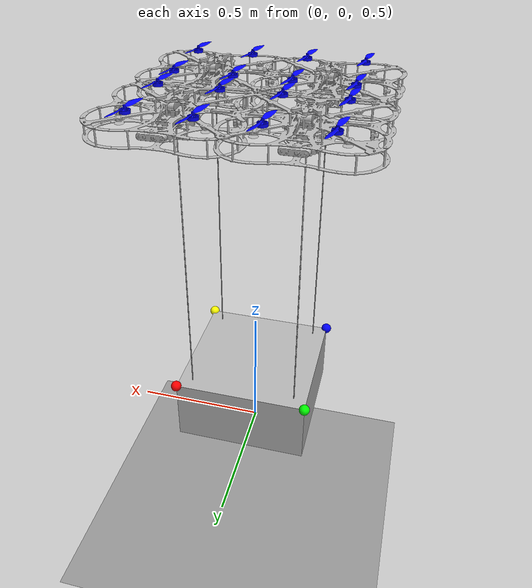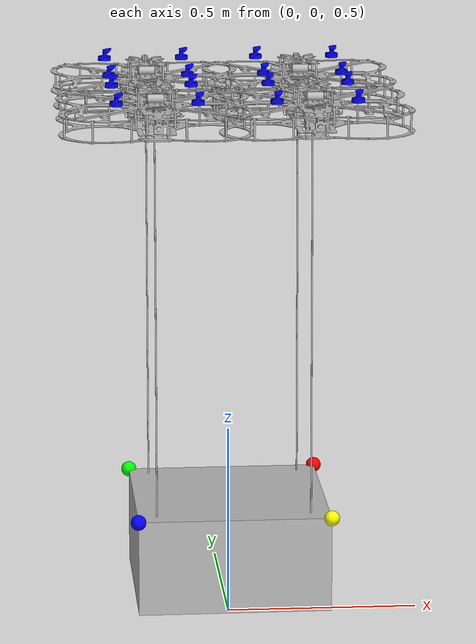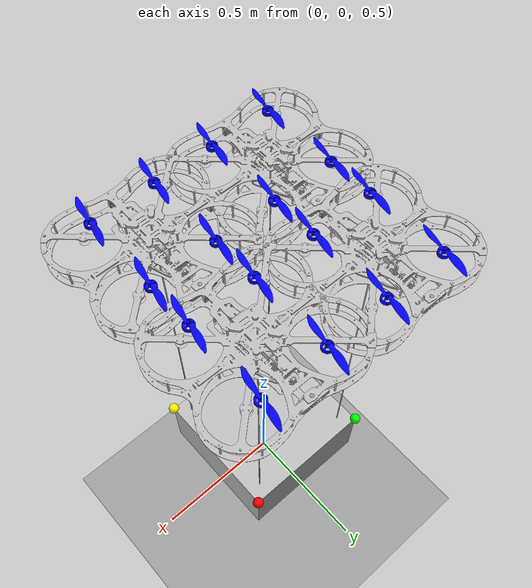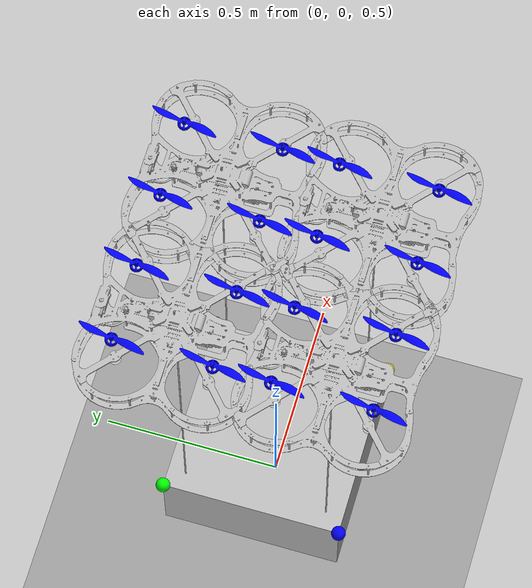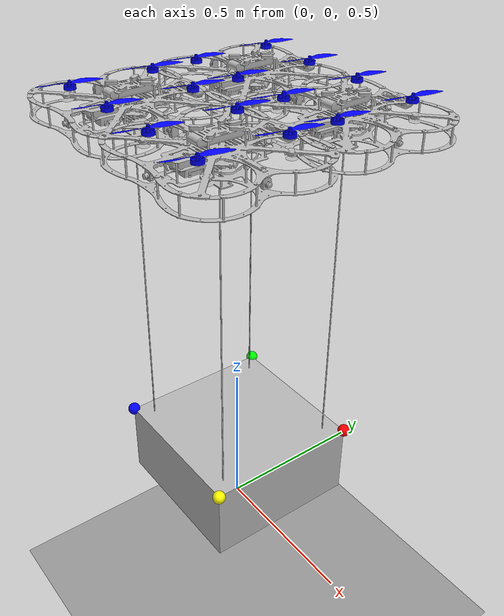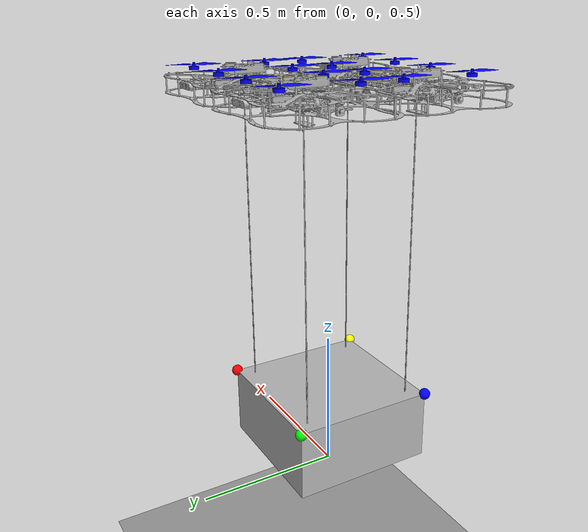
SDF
<sdf version="1.9">
  <world name="coop_transport">

    <!-- Physics: DART -->
    <physics type="dart">
      <max_step_size>0.001</max_step_size>
      <real_time_factor>1.0</real_time_factor>
      <real_time_update_rate>1000</real_time_update_rate>
      <dart>
        <solver><solver_type>dantzig</solver_type></solver>
        <collision_detector>bullet</collision_detector>
      </dart>
    </physics>

    <gravity>0 0 -9.82</gravity>
    <magnetic_field>6e-06 2.3e-05 -4.2e-05</magnetic_field>
    <atmosphere type="adiabatic" />
    <scene>
      <ambient>0.4 0.4 0.4 1</ambient>
      <background>0.7 0.7 0.8 1</background>
      <shadows>false</shadows>
    </scene>
    <light name="sun" type="directional">
      <pose>0 0 10 0 -0 0</pose>
      <cast_shadows>false</cast_shadows>
      <intensity>1</intensity>
      <direction>-0.5 0.1 -0.9</direction>
    </light>
     <light name="lights1" type="directional">
      <pose>0 0 3 0 -0 0</pose>
      <cast_shadows>false</cast_shadows>
      <intensity>1</intensity>
      <direction>0 0 -1</direction>
    </light>
    <light name="lights2" type="directional">
      <pose>1 0 3 0 -0 0</pose>
      <cast_shadows>false</cast_shadows>
      <intensity>1</intensity>
      <direction>0 0 -1</direction>
    </light>

    <light name="lights3" type="directional">
      <pose>-1 0 3 0 -0 0</pose>
      <cast_shadows>false</cast_shadows>
      <intensity>1</intensity>
      <direction>0 0 -1</direction>
    </light>

    <light name="lights4" type="directional">
      <pose>0 1 3 0 -0 0</pose>
      <cast_shadows>false</cast_shadows>
      <intensity>1</intensity>
      <direction>0 0 -1</direction>
    </light>

    <light name="lights5" type="directional">
      <pose>0 1 3 0 -0 0</pose>
      <cast_shadows>false</cast_shadows>
      <intensity>1</intensity>
      <direction>0 0 -1</direction>
    </light>

    <!-- Ground -->
    <model name="ground">
      <static>true</static>
      <link name="link">
        <collision name="col">
          <geometry><plane><normal>0 0 1</normal><size>200 200</size></plane></geometry>
        </collision>
        <visual name="vis">
          <geometry><plane><normal>0 0 1</normal><size>200 200</size></plane></geometry>

<material>
  <ambient>0.2 0.2 0.2 1</ambient>
  <diffuse>0.6 0.6 0.6 1</diffuse>
  <specular>1.0 1.0 1.0 1</specular>
  <shininess>100</shininess>
</material>

        </visual>
      </link>
    </model>

    <!-- Quadrotors (assumes model://quadrotor.sdf has link 'base_link') -->
    <model name="coop_agent">
    <include>
      <uri>model://quadrotor.sdf</uri>
      <name>quadrotor1</name>
      <pose> 0.20  0.20  1.9  0 0 0</pose>
    </include>
    <include>
      <uri>model://quadrotor.sdf</uri>
      <name>quadrotor2</name>
      <pose>-0.20  0.20  1.9  0 0 0</pose>
    </include>
    <include>
      <uri>model://quadrotor.sdf</uri>
      <name>quadrotor3</name>
      <pose>-0.20 -0.20  1.9  0 0 0</pose>
    </include>
    <include>
      <uri>model://quadrotor.sdf</uri>
      <name>quadrotor4</name>
      <pose> 0.20 -0.20  1.9  0 0 0</pose>
    </include>

    <!-- Payload box at origin (COM at z=1.00). Size 0.5x0.5x0.25 (half-height = 0.125) -->
   <model name="payload_box">
  <pose>0 0 0.7 0 0 0</pose>

  <!-- Main box -->
  <link name="payload_box_link">
    <inertial>
      <mass>0.500</mass>
      <inertia>
        <ixx>0.0130</ixx>
        <iyy>0.0130</iyy>
        <izz>0.02</izz>
      </inertia>
    </inertial>
    <collision name="payload_col">
      <geometry><box><size>0.5 0.5 0.25</size></box></geometry>
    </collision>
    <visual name="payload_vis">
      <geometry><box><size>0.5 0.5 0.25</size></box></geometry>
    </visual>
  </link>

  <!-- Corner links (tiny spheres, nearly massless) -->
  <link name="corner1">
    <pose> 0.25  0.25 0.125  0 0 0</pose>
    <inertial>
      <mass>0.001</mass>
      <inertia>
        <ixx>1e-6</ixx><iyy>1e-6</iyy><izz>1e-6</izz>
      </inertia>
    </inertial>
    <visual name="vis_corner1">
      <geometry><sphere><radius>0.02</radius></sphere></geometry>
      <material><ambient>1 0 0 1</ambient></material>
    </visual>
  </link>

  <link name="corner2">
    <pose>-0.25  0.25 0.125  0 0 0</pose>
    <inertial>
      <mass>0.001</mass>
      <inertia>
        <ixx>1e-6</ixx><iyy>1e-6</iyy><izz>1e-6</izz>
      </inertia>
    </inertial>
    <visual name="vis_corner2">
      <geometry><sphere><radius>0.02</radius></sphere></geometry>
      <material><ambient>0 1 0 1</ambient></material>
    </visual>
  </link>

  <link name="corner3">
    <pose>-0.25 -0.25 0.125  0 0 0</pose>
    <inertial>
      <mass>0.001</mass>
      <inertia>
        <ixx>1e-6</ixx><iyy>1e-6</iyy><izz>1e-6</izz>
      </inertia>
    </inertial>
    <visual name="vis_corner3">
      <geometry><sphere><radius>0.02</radius></sphere></geometry>
      <material><ambient>0 0 1 1</ambient></material>
    </visual>
  </link>

  <link name="corner4">
    <pose> 0.25 -0.25 0.125  0 0 0</pose>
    <inertial>
      <mass>0.001</mass>
      <inertia>
        <ixx>1e-6</ixx><iyy>1e-6</iyy><izz>1e-6</izz>
      </inertia>
    </inertial>
    <visual name="vis_corner4">
      <geometry><sphere><radius>0.02</radius></sphere></geometry>
      <material><ambient>1 1 0 1</ambient></material>
    </visual>
  </link>

</model>

    <!-- Tether template (replicated 4x)
         Each tether is a 0.60 m cylinder (r=0.002), link origin at its center.
         We'll place the link midpoint midway between UAV and its payload attach.
    -->
    <model name="tether1">
      <pose>0.20 0.20 1.3625  0 0 0</pose>
      <link name="link">
        <inertial>
          <mass>0.006</mass>
          <inertia>
            <!-- Slender rod L=0.60, r=0.002 -->
            <ixx>7.2e-4</ixx>
            <iyy>7.2e-4</iyy>
            <izz>1.20e-8</izz>
          </inertia>
        </inertial>
        <collision name="col">
          <!-- Draw the cylinder centered at link origin, axis along +Z -->
          <geometry><cylinder><radius>0.002</radius><length>1.2</length></cylinder></geometry>
          <surface><soft_contact><dart>
            <bone_attachment>100</bone_attachment>
            <stiffness>100</stiffness>
            <damping>10</damping>
            <flesh_mass_fraction>0.05</flesh_mass_fraction>
            </dart></soft_contact></surface>
        </collision>
        <visual name="vis">
          <geometry><cylinder><radius>0.002</radius><length>1.2</length></cylinder></geometry>
        </visual>
      </link>
    </model>

    <model name="tether2">
      <pose>-0.20 0.20 1.3625  0 0 0</pose>
      <link name="link">
        <inertial>
          <mass>0.006</mass>
          <inertia><ixx>7.2e-4</ixx><iyy>7.2e-4</iyy><izz>1.20e-8</izz></inertia>
        </inertial>
        <collision name="col">
          <geometry><cylinder><radius>0.002</radius><length>1.2</length></cylinder></geometry>
          <surface><soft_contact><dart>
            <bone_attachment>100</bone_attachment>
            <stiffness>100</stiffness>
            <damping>10</damping>
            <flesh_mass_fraction>0.05</flesh_mass_fraction>
            </dart></soft_contact></surface>
        </collision>
        <visual name="vis">
          <geometry><cylinder><radius>0.002</radius><length>1.2</length></cylinder></geometry>
        </visual>
      </link>
    </model>

    <model name="tether3">
      <pose>-0.20 -0.20 1.3625  0 0 0</pose>
      <link name="link">
        <inertial>
          <mass>0.006</mass>
          <inertia><ixx>7.2e-4</ixx><iyy>7.2e-4</iyy><izz>1.20e-8</izz></inertia>
        </inertial>
        <collision name="col">
          <geometry><cylinder><radius>0.002</radius><length>1.2</length></cylinder></geometry>
          <surface><soft_contact><dart>
            <bone_attachment>100</bone_attachment>
            <stiffness>100</stiffness>
            <damping>10</damping>
            <flesh_mass_fraction>0.05</flesh_mass_fraction>
            </dart></soft_contact></surface>
        </collision>
        <visual name="vis">
          <geometry><cylinder><radius>0.002</radius><length>1.2</length></cylinder></geometry>
        </visual>
      </link>
    </model>

    <model name="tether4">
      <pose>0.20 -0.20 1.3625  0 0 0</pose>
      <link name="link">
        <inertial>
          <mass>0.006</mass>
          <inertia><ixx>7.2e-4</ixx><iyy>7.2e-4</iyy><izz>1.20e-8</izz></inertia>
        </inertial>
        <collision name="col">
          <geometry><cylinder><radius>0.002</radius><length>1.2</length></cylinder></geometry>
          <surface><soft_contact><dart>
            <bone_attachment>100</bone_attachment>
            <stiffness>100</stiffness>
            <damping>10</damping>
            <flesh_mass_fraction>0.05</flesh_mass_fraction>
            </dart></soft_contact></surface>
        </collision>
        <visual name="vis">
          <geometry><cylinder><radius>0.002</radius><length>1.2</length></cylinder></geometry>
        </visual>
      </link>
    </model>

    <!-- Tether 1: +x,+y corner -->
    <joint name="t1_top" type="ball">
      <parent>quadrotor1::quadrotor/base_link</parent>
      <child>tether1::link</child>
      <!-- joint frame at tether top end (child +0.30 z) -->
      <pose relative_to="tether1::link">0 0 0.60  0 0 0</pose>
    </joint>
    <joint name="t1_bottom" type="ball">
      <parent>tether1::link</parent>
      <child>payload_box::corner1</child>
      <!-- joint frame at tether bottom end (child -0.30 z) which is also payload corner (+0.20,+0.20,+0.125) in world initially -->
      <pose relative_to="tether1::link">0 0 -0.60  0 0 0</pose>
    </joint>

    <!-- Tether 2: -x,+y corner -->
    <joint name="t2_top" type="ball">
      <parent>quadrotor2::quadrotor/base_link</parent>
      <child>tether2::link</child>
      <pose relative_to="tether2::link">0 0 0.60  0 0 0</pose>
    </joint>
    <joint name="t2_bottom" type="ball">
      <parent>tether2::link</parent>
      <child>payload_box::corner2</child>
      <pose relative_to="tether2::link">0 0 -0.60  0 0 0</pose>
    </joint>

    <!-- Tether 3: -x,-y corner -->
    <joint name="t3_top" type="ball">
      <parent>quadrotor3::quadrotor/base_link</parent>
      <child>tether3::link</child>
      <pose relative_to="tether3::link">0 0 0.60  0 0 0</pose>
    </joint>
    <joint name="t3_bottom" type="ball">
      <parent>tether3::link</parent>
      <child>payload_box::corner3</child>
      <pose relative_to="tether3::link">0 0 -0.60  0 0 0</pose>
    </joint>

    <!-- Tether 4: +x,-y corner -->
    <joint name="t4_top" type="ball">
      <parent>quadrotor4::quadrotor/base_link</parent>
      <child>tether4::link</child>
      <pose relative_to="tether4::link">0 0 0.60  0 0 0</pose>
    </joint>
    <joint name="t4_bottom" type="ball">
      <parent>tether4::link</parent>
      <child>payload_box::corner4</child>
      <pose relative_to="tether4::link">0 0 -0.60  0 0 0</pose>
    </joint>
    </model>

  </world>
</sdf>

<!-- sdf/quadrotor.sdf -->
<sdf version='1.11'>
  <model name='quadrotor'>

    <enable_wind>1</enable_wind>
    <link name='quadrotor/base_link'>
      <inertial>
        <pose>0 0 0 0 0 0</pose>
        <mass>1.52</mass>
        <inertia>
          <ixx>14387108.65e-9</ixx>
          <iyy>16559882.52e-9</iyy>
          <izz>28784890.45e-9</izz>
        </inertia>
      </inertial>
      <collision name='quadrotor/base_link_inertia_collision_2'>
        <pose>0 0 0 0 0 0</pose>
        <geometry>
          <box>
            <size>0.2 0.2 0.05</size>
          </box>
        </geometry>
        <surface>
          <contact>
            <collide_without_contact>1</collide_without_contact>
          </contact>
        </surface>
      </collision>
      <visual name='quadrotor/base_link_inertia_visual_2'>
        <pose>0 0 0 3.1415920000000002 0 0</pose>
        <geometry>
          <mesh>
            <scale>1 1 1</scale>
            <uri>model://meshes/QDrone2_Combined.dae</uri>
          </mesh>
        </geometry>
      </visual>
      <sensor name='grayscale' type='camera'>
        <camera name='graycale'>
          <image>
            <width>640</width>
            <height>480</height>
            <format>L8</format>
          </image>
          <clip>
            <near>0.10000000000000001</near>
            <far>100</far>
          </clip>
          <noise>
            <type>gaussian</type>
            <mean>0</mean>
            <stddev>1e-3</stddev>
          </noise>

          <lens>
            <type>stereographic</type>
            <scale_to_hfov>1</scale_to_hfov>

              <intrinsics>

              <fx>381.47</fx>
              <fy>762.156</fy>
              <cx>297.96</cx>
              <cy>215.755</cy>

            </intrinsics>
            <projection>
              <p_fx>381.47</p_fx>
              <p_fy>762.156</p_fy>
              <p_cx>297.96</p_cx>
              <p_cy>215.755</p_cy>

            </projection>
          </lens>
        </camera>
        <always_on>false</always_on>
        <update_rate>30</update_rate>
        <visualize>false</visualize>
        <pose>0.125 0 -0.0375 3.14 1.57 3.14</pose>
      </sensor>
      <!--rgbd-->
       <sensor name='rgb' type='camera'>
        <camera name='rgb'>
          <image>
            <width>640</width>
            <height>480</height>
            <format>R8G8B8</format>
          </image>
          <clip>
            <near>0.10000000000000001</near>
            <far>100</far>
          </clip>
          <noise>
            <type>gaussian</type>
            <mean>0</mean>
            <stddev>1e-3</stddev>
          </noise>

          <lens>
            <type>stereographic</type>
            <scale_to_hfov>1</scale_to_hfov>

              <intrinsics>

              <fx>381.47</fx>
              <fy>762.156</fy> >
              <cx>297.96</cx>
              <cy>215.755</cy>

            </intrinsics>
            <projection>
              <p_fx>381.47</p_fx>
              <p_fy>762.156</p_fy>
              <p_cx>297.96</p_cx>
              <p_cy>215.755</p_cy>

            </projection>
          </lens>
        </camera>
        <always_on>false</always_on>
        <update_rate>30</update_rate>
        <visualize>false</visualize>
        <pose>0.15 0 0 0 0 0</pose>
      </sensor>
       <sensor name='depth' type='depth_camera'>
        <camera name='depth_cam'>
          <image>
            <width>640</width>
            <height>480</height>
            <format>R_FLOAT32</format>
          </image>
          <clip>
            <near>0.10000000000000001</near>
            <far>100</far>
          </clip>
          <noise>
            <type>gaussian</type>
            <mean>0</mean>
            <stddev>1e-3</stddev>
          </noise>
        </camera>
        <always_on>false</always_on>
        <update_rate>30</update_rate>
        <visualize>false</visualize>
        <pose>0.2 0 0 0 0 0</pose>
      </sensor>

      <!--IMU1 , we will use different noise params-->
      <!-- range sensor using lidar-->
      <!-- we will only use a single vertical ray-->
    </link>

    <joint name='quadrotor/rotor_0_joint' type='revolute'>
      <pose relative_to='quadrotor/base_link'>-0.1016 -0.127 0.023 0 0 0</pose>
      <parent>quadrotor/base_link</parent>
      <child>quadrotor/rotor_0</child>
      <axis>
        <xyz>0 0 1</xyz>
        <limit>
          <lower>-inf</lower>
          <upper>inf</upper>
        </limit>
        <dynamics>
          <spring_reference>0</spring_reference>
          <spring_stiffness>0</spring_stiffness>
        </dynamics>
      </axis>
    </joint>
    <link name='quadrotor/rotor_0'>
      <pose relative_to='quadrotor/rotor_0_joint'>0 0 0 0 0 0</pose>
      <inertial>
        <pose>0 0 0 0 0 0</pose>
        <mass>0.0050000000000000001</mass>
        <inertia>
          <ixx>1.9500000000000001e-07</ixx>
          <ixy>0</ixy>
          <ixz>0</ixz>
          <iyy>3.3340833333333338e-05</iyy>
          <iyz>0</iyz>
          <izz>3.3520833333333339e-05</izz>
        </inertia>
      </inertial>
      <collision name='quadrotor/rotor_0_collision'>
        <pose>0 0 0 0 0 0</pose>
        <geometry>
          <cylinder>
            <length>0.0050000000000000001</length>
            <radius>0.10000000000000001</radius>
          </cylinder>
        </geometry>
        <surface>
          <contact>
            <ode/>
          </contact>
          <friction>
            <ode/>
          </friction>
        </surface>
      </collision>
      <visual name='quadrotor/rotor_0_visual'>
        <pose>0 0 0 0 0 0</pose>
        <geometry>
          <mesh>
            <scale>1 1 1</scale>
            <uri>model://meshes/motor_prop_assembly.dae</uri>
          </mesh>
        </geometry>
        <material>
          <ambient>0 0 1 1</ambient>
          <diffuse>0 0 1 1</diffuse>
          <specular>0.1 0.1 0.1 1</specular>
          <emissive>0 0 0 0</emissive>
      </material>
      </visual>
    </link>
    <joint name='quadrotor/rotor_1_joint' type='revolute'>
      <pose relative_to='quadrotor/base_link'>0.1016 -0.127 0.023 0 0 0</pose>
      <parent>quadrotor/base_link</parent>
      <child>quadrotor/rotor_1</child>
      <axis>
        <xyz>0 0 1</xyz>
        <limit>
          <lower>-inf</lower>
          <upper>inf</upper>
        </limit>
        <dynamics>
          <spring_reference>0</spring_reference>
          <spring_stiffness>0</spring_stiffness>
        </dynamics>
      </axis>
    </joint>
    <link name='quadrotor/rotor_1'>
      <pose relative_to='quadrotor/rotor_1_joint'>0 0 0 0 0 0</pose>
      <inertial>
        <pose>0 0 0 0 0 0</pose>
        <mass>0.0050000000000000001</mass>
        <inertia>
          <ixx>1.9500000000000001e-07</ixx>
          <ixy>0</ixy>
          <ixz>0</ixz>
          <iyy>3.3340833333333338e-05</iyy>
          <iyz>0</iyz>
          <izz>3.3520833333333339e-05</izz>
        </inertia>
      </inertial>
      <collision name='quadrotor/rotor_1_collision'>
        <pose>0 0 0 0 0 0</pose>
        <geometry>
          <cylinder>
            <length>0.0050000000000000001</length>
            <radius>0.10000000000000001</radius>
          </cylinder>
        </geometry>
        <surface>
          <contact>
            <ode/>
          </contact>
          <friction>
            <ode/>
          </friction>
        </surface>
      </collision>
      <visual name='quadrotor/rotor_1_visual'>
        <pose>0 0 0 0 0 0</pose>
        <geometry>
          <mesh>
            <scale>1 1 1</scale>
            <uri>model://meshes/motor_prop_assembly.dae</uri>
          </mesh>
        </geometry>
        <material>
          <ambient>0 0 1 1</ambient>
          <diffuse>0 0 1 1</diffuse>
          <specular>0.1 0.1 0.1 1</specular>
          <emissive>0 0 0 0</emissive>
      </material>
      </visual>
    </link>
    <joint name='quadrotor/rotor_2_joint' type='revolute'>
      <pose relative_to='quadrotor/base_link'>-0.1016 0.127 0.023 0 0 0</pose>
      <parent>quadrotor/base_link</parent>
      <child>quadrotor/rotor_2</child>
      <axis>
        <xyz>0 0 1</xyz>
        <limit>
          <lower>-inf</lower>
          <upper>inf</upper>
        </limit>
        <dynamics>
          <spring_reference>0</spring_reference>
          <spring_stiffness>0</spring_stiffness>
        </dynamics>
      </axis>
    </joint>
    <link name='quadrotor/rotor_2'>
      <pose relative_to='quadrotor/rotor_2_joint'>0 0 0 0 0 0</pose>
      <inertial>
        <pose>0 0 0 0 0 0</pose>
        <mass>0.0050000000000000001</mass>
        <inertia>
          <ixx>1.9500000000000001e-07</ixx>
          <ixy>0</ixy>
          <ixz>0</ixz>
          <iyy>3.3340833333333338e-05</iyy>
          <iyz>0</iyz>
          <izz>3.3520833333333339e-05</izz>
        </inertia>
      </inertial>
      <collision name='quadrotor/rotor_2_collision'>
        <pose>0 0 0 0 0 0</pose>
        <geometry>
          <cylinder>
            <length>0.0050000000000000001</length>
            <radius>0.10000000000000001</radius>
          </cylinder>
        </geometry>
        <surface>
          <contact>
            <ode/>
          </contact>
          <friction>
            <ode/>
          </friction>
        </surface>
      </collision>
      <visual name='quadrotor/rotor_2_visual'>
        <pose>0 0 0 0 0 0</pose>
        <geometry>
          <mesh>
            <scale>1 1 1</scale>
            <uri>model://meshes/motor_prop_assembly.dae</uri>
          </mesh>
        </geometry>
        <material>
          <ambient>0 0 1 1</ambient>
          <diffuse>0 0 1 1</diffuse>
          <specular>0.1 0.1 0.1 1</specular>
          <emissive>0 0 0 0</emissive>
      </material>
      </visual>
    </link>
    <joint name='quadrotor/rotor_3_joint' type='revolute'>
      <pose relative_to='quadrotor/base_link'>0.1016 0.127 0.023 0 0 0</pose>
      <parent>quadrotor/base_link</parent>
      <child>quadrotor/rotor_3</child>
      <axis>
        <xyz>0 0 1</xyz>
        <limit>
          <lower>-inf</lower>
          <upper>inf</upper>
        </limit>
        <dynamics>
          <spring_reference>0</spring_reference>
          <spring_stiffness>0</spring_stiffness>
        </dynamics>
      </axis>
    </joint>
    <link name='quadrotor/rotor_3'>
      <pose relative_to='quadrotor/rotor_3_joint'>0 0 0 0 0 0</pose>
      <inertial>
        <pose>0 0 0 0 0 0</pose>
        <mass>0.0050000000000000001</mass>
        <inertia>
          <ixx>1.9500000000000001e-07</ixx>
          <ixy>0</ixy>
          <ixz>0</ixz>
          <iyy>3.3340833333333338e-05</iyy>
          <iyz>0</iyz>
          <izz>3.3520833333333339e-05</izz>
        </inertia>
      </inertial>
      <collision name='quadrotor/rotor_3_collision'>
        <pose>0 0 0 0 0 0</pose>
        <geometry>
          <cylinder>
            <length>0.0050000000000000001</length>
            <radius>0.10000000000000001</radius>
          </cylinder>
        </geometry>
        <surface>
          <contact>
            <ode/>
          </contact>
          <friction>
            <ode/>
          </friction>
        </surface>
      </collision>
      <visual name='quadrotor/rotor_3_visual'>
        <pose>0 0 0 0 0 0</pose>
        <geometry>
          <mesh>
            <scale>1 1 1</scale>
            <uri>model://meshes/motor_prop_assembly.dae</uri>
          </mesh>
        </geometry>
        <material>
          <ambient>0 0 1 1</ambient>
          <diffuse>0 0 1 1</diffuse>
          <specular>0.1 0.1 0.1 1</specular>
          <emissive>0 0 0 0</emissive>
      </material>
      </visual>
    </link>

    <plugin name='gz::sim::systems::MultiRotorPlugin' filename='rotor_plugin'>
      <parentLink>quadrotor/base_link</parentLink>
      <linkNames>quadrotor/rotor_0 quadrotor/rotor_1 quadrotor/rotor_2 quadrotor/rotor_3</linkNames>
      <turningDirections>1 -1 -1 1</turningDirections>
      <timeConstantUp>0.0125</timeConstantUp>
      <timeConstantDown>0.025</timeConstantDown>
      <maxRotVelocity>2246.0</maxRotVelocity>
      <thrustConstantQuadraticParams>1.9533e-6 0 0</thrustConstantQuadraticParams>

      <groundEffectConstant>1.17198e-09</groundEffectConstant>
      <momentConstantQuadraticParams>2.8400982e-08  0 0</momentConstantQuadraticParams>
      <downWashCoefficients>0.0 0.0 0.0</downWashCoefficients>
      <otherUavNames></otherUavNames>
      <rotorInertia>4.92e-6</rotorInertia>
      <rotorDragCoefficient>0.000020673</rotorDragCoefficient>
      <rollingMomentCoefficient>1e-9</rollingMomentCoefficient>
      <rotorVelocitySlowdownSim>2</rotorVelocitySlowdownSim>
    </plugin>

    <frame name='cam_joint' attached_to='quadrotor/base_link'>
      <pose>0 0 0 0 0 0</pose>
    </frame>
    <frame name='cam_link' attached_to='cam_joint'>
      <pose>0 0 0 0 0 0</pose>
    </frame>
    <frame name='imu_joint' attached_to='quadrotor/base_link'>
      <pose>0 0 0 0 0 0</pose>
    </frame>
    <frame name='imu_link' attached_to='imu_joint'>
      <pose>0 0 0 0 0 0</pose>
    </frame>
    <frame name='quadrotor/base_joint' attached_to='quadrotor/base_link'>
      <pose>0 0 0 0 0 0</pose>
    </frame>
    <frame name='quadrotor/base_link_inertia' attached_to='quadrotor/base_joint'>
      <pose>0 0 0 0 0 0</pose>
    </frame>
  </model>
</sdf>
